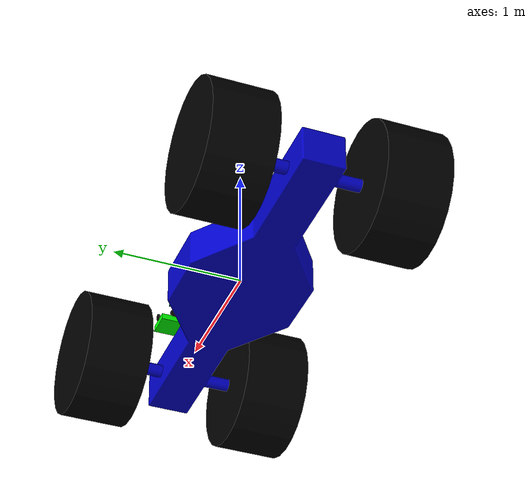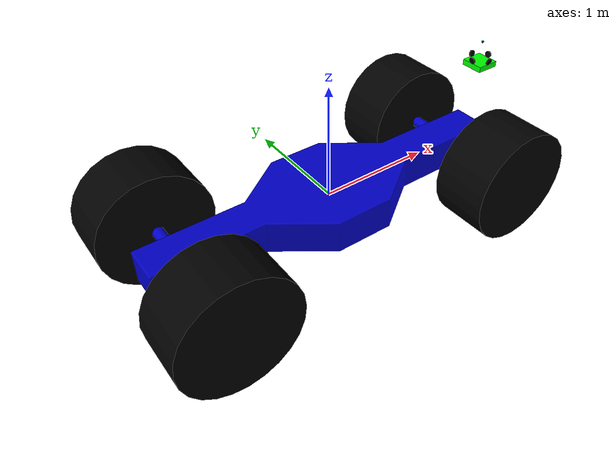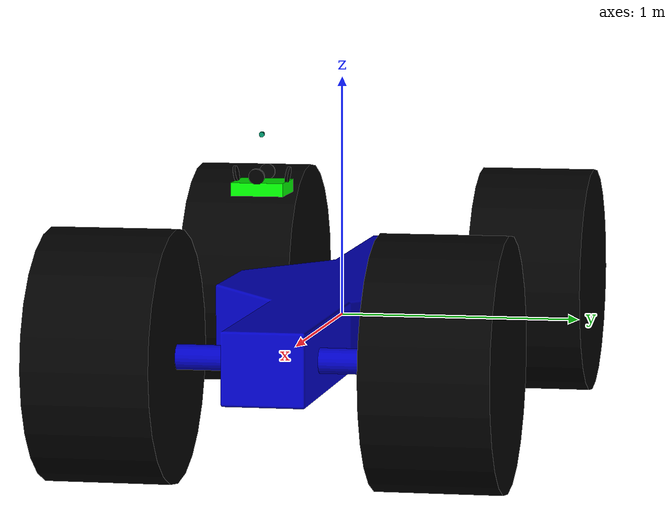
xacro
<?xml version="1.0"?>
<robot name="etractor" xmlns:xacro="http://ros.org/wiki/xacro">

<xacro:include filename="$(find et_sim)/urdf/includes/properties.urdf.xacro"/>
<xacro:include filename="$(find et_sim)/urdf/includes/materials.urdf.xacro"/>
<xacro:include filename="$(find et_sim)/urdf/includes/inertials.urdf.xacro"/>
<xacro:include filename= "$(find et_sim)/urdf/sensoric/360_cam_sys.urdf.xacro" />
<xacro:include filename= "$(find et_sim)/urdf/sensoric/zed2_simple.urdf.xacro" />

<!-- Dummy link workaround -->
<link name="base_link">
    <visual>
      <geometry>
        <sphere radius="0.01"/>
      </geometry>
      <material name="blue"/>
    </visual>
    <collision>
      <geometry>
        <sphere radius="0.01"/>
      </geometry>
    </collision>
  </link>

    <!-- Baseframe -->
    <link name="baseframe">
        <visual>
            <geometry>
                <mesh filename="package://et_sim/meshes/baseframe.dae" />
            </geometry>
            <material name="blue" />
            <origin xyz="0 0 0" rpy="${pi/2} 0 0" />
        </visual>
        <collision>
            <geometry>
                <mesh filename="package://et_sim/meshes/baseframe.dae" />
            </geometry>
            <origin xyz="0 0 0" rpy="${pi/2} 0 0" />
        </collision>
        <xacro:default_inertial mass="${baseframe_mass}"/>
    </link>
    <joint name="baseframe-base_link" type="fixed">
        <parent link="base_link"/>
        <child link="baseframe"/>
    </joint>

<!-- Steeraxis -->
    <xacro:macro name="steeraxis" params="prefix reflect" >
    <link name="${prefix}_steeraxis">
        <visual>
            <geometry>
                <cylinder radius="${steeraxis_dia/2}" length="${steeraxis_length}"/>
            </geometry>
            <material name= "blue"/>
            <origin xyz="0.0 0.0 0.0" rpy="${pi_half} 0.0 0.0"/>
        </visual>
        <collision>
            <geometry>
                <cylinder radius="${steeraxis_dia/2}" length="${steeraxis_length}"/>
            </geometry>
            <origin xyz="0.0 0.0 0.0" rpy="${pi_half} 0.0 0.0"/>
        </collision>
        <xacro:solid_cylinder_inertial
            radius  = "${steeraxis_dia/2}"
            height  = "${steeraxis_length}"
            mass    = "${steeraxis_mass}">
        </xacro:solid_cylinder_inertial>
    </link>
    <joint name="${prefix}_axis_baseframe" type="fixed">
        <parent link="baseframe"/>
        <child link="${prefix}_steeraxis"/>
        <origin xyz="${((baseframe_length/2) -steeraxis_offset) * reflect} 0.0 0.0" rpy="0.0 0.0 0.0"/>
    </joint>
</xacro:macro>

<xacro:steeraxis prefix="front"  reflect="1" />
<xacro:steeraxis prefix="back"   reflect="-1" />

<!-- wheels begin -->
<xacro:macro name= "wheel" params= "prefix suffix lr_refl">
    <link name="${prefix}_${suffix}_wheel">
        <xacro:solid_cylinder_inertial
            radius  = "${wheel_dia/2}"
            height  = "${wheel_width}"
            mass    = "${wheel_mass}">
        </xacro:solid_cylinder_inertial>
        <visual>
            <origin rpy="${pi_half} 0.0 0.0"/>
            <geometry>
                <cylinder radius="${wheel_dia/2}" length="${wheel_width}"/>
            </geometry>
            <material name= "black"/>
        </visual>
        <collision>
            <origin rpy="${pi_half} 0.0 0.0"/>
            <geometry>
                <cylinder radius="${wheel_dia/2}" length="${wheel_width}"/>
            </geometry>
        </collision>
    </link>
    <joint name="${prefix}_${suffix}_wheel_joint" type="continuous">
        <origin xyz="0.0 ${(steeraxis_length+wheel_width) * lr_refl/2.0} 0.0" rpy="0.0 0.0 0.0"/>
        <parent link="${prefix}_steeraxis"/>
        <child link="${prefix}_${suffix}_wheel"/>
        <axis xyz="0 1 0 "/>
        <limit effort="${wheel_max_torque}" velocity="${wheel_max_vel}"/>
    </joint>
    <gazebo reference="${prefix}_${suffix}_wheel">
        <mu1 value ="${wheel_friction_coeff_dir1}"/>
        <mu2 value ="${wheel_friction_coeff_dir2}"/>
        <kp value  ="${wheel_stiffness_coeff}"   />
        <kd value  ="${wheel_damping_coeff}"   />
        <material>Gazebo/Black</material>
      </gazebo>
    <!-- This block connects the wheel joint to an actuator (motor), which informs both
    simulation and visualization of the robot -->
    <transmission name="${prefix}_${suffix}_wheel_trans">
        <type>transmission_interface/SimpleTransmission</type>
        <actuator name="${prefix}_${suffix}_wheel_motor">
          <mechanicalReduction>1</mechanicalReduction>
        </actuator>
        <joint name="${prefix}_${suffix}_wheel_joint">
          <hardwareInterface>hardware_interface/VelocityJointInterface</hardwareInterface>
        </joint>
      </transmission>

</xacro:macro>

<xacro:wheel prefix="front"    suffix="left"   lr_refl= "1" />
<xacro:wheel prefix="front"    suffix="right"  lr_refl= "-1" />
<xacro:wheel prefix="back"     suffix="left"   lr_refl= "1" />
<xacro:wheel prefix="back"     suffix="right"  lr_refl= "-1" />
<!-- wheels end -->

<!-- Gazebo plugin for ROS Control -->
<gazebo>
    <plugin name="gazebo_ros_control" filename="libgazebo_ros_control.so">
        <robotNamespace>/</robotNamespace>
    </plugin>
</gazebo>

<!-- 360° Camera System -->
<xacro:cam_sys name="camsys"
parent= "baseframe"
base_x = "${camsys_base_x}"
base_y = "${camsys_base_y}"
base_z = "${camsys_base_z}"
base_mass = "${camsys_base_mass}"
cam_tilt = "${camsys_tilt}"
hfov="${camsys_hfov}"
res_x="${camsys_res_x}"
res_y= "${camsys_res_y}"
image_format = "R8G8B8"
update_rate = "50"
>
<origin xyz="${camsys_offset_xyz}" rpy="0.0 0.0 0.0"/>
</xacro:cam_sys>

<!-- Simple ZED2 Modell -->
<xacro:zed2_simple name="zed2" parent="camsys_base" hfov="110" res_w="1920" res_h="1080">
<origin xyz="0 0 0.2" rpy="0.0 ${10 *pi / 180} 0.0"/>
</xacro:zed2_simple>
</robot>

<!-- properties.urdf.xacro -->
<robot name="properties" xmlns:xacro="http://ros.org/wiki/xacro">
    <!-- Baseframe-Parameters-->
    <xacro:property name="baseframe_mass" value="300" />
    <xacro:property name="baseframe_length" value="3.300" />
    <xacro:property name="baseframe_width" value="0.980" />
    <xacro:property name="baseframe_height" value="0.290" />
    <xacro:property name="baseframe_width" value="0.980" />
    <!-- Steerin-axis-Parameter (Simplyfied as cylinder)-->
    <xacro:property name="steeraxis_mass"   value="100" />
    <xacro:property name="steeraxis_dia"    value="0.1" />
    <xacro:property name="steeraxis_length" value="0.8" />
    <xacro:property name="steeraxis_offset"  value="0.3" />
    <!-- wheel-Parametes -->
    <xacro:property name="wheel_dia"    value="1" />
    <xacro:property name="wheel_width"  value="0.5" />
    <xacro:property name="wheel_mass"   value="100" />
    <xacro:property name="wheel_friction_coeff_dir1"   value="10" />
    <xacro:property name="wheel_friction_coeff_dir2"   value="10" />
    <xacro:property name="wheel_stiffness_coeff"   value="1000000000" />
    <xacro:property name="wheel_damping_coeff"   value="1" />
    <xacro:property name="wheel_max_torque"   value="1000000000" />
    <xacro:property name="wheel_max_vel"   value="10000" />
    <!--360°-Camera-System-Parameters-->
    <xacro:property name="camsys_base_x"    value="0.2" />
    <xacro:property name="camsys_base_y"    value="0.2" />
    <xacro:property name="camsys_base_z"    value="0.05" />
    <xacro:property name="camsys_base_mass"    value="1" />
    <xacro:property name="camsys_offset_xyz"    value="${baseframe_length/2} 0 0.7" />
    <xacro:property name="camsys_tilt"    value="10" />
    <xacro:property name="camsys_res_x"    value="4192" />
    <xacro:property name="camsys_res_y"    value="3120" />
    <xacro:property name="camsys_hfov"    value="110" />

    <!-- Constants -->
    <xacro:property name="pi"       value="3.1415926" />
    <xacro:property name="pi_half"  value="1.5707963" />
    <xacro:property name="pi_quad"  value="0.7853981" />
</robot>

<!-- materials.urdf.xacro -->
<robot name="materials" xmlns:xacro="http://ros.org/wiki/xacro">

    <!-- Color definition -->
    <material name="blue">
        <color rgba="0.0 0.0 0.8 1.0" />
    </material>

    <material name="white">
        <color rgba="1.0 1.0 1.0 1.0" />
    </material>

    <material name="black">
        <color rgba="0.0 0.0 0.0 1.0" />
    </material>

    <material name="red">
        <color rgba="1.0 0.0 0.0 1.0" />
    </material>
        <material name="green">
        <color rgba="0.0 1.0 0.0 1.0" />
    </material>

</robot>

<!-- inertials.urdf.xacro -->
<robot name="inertials" xmlns:xacro="http://ros.org/wiki/xacro">
<!-- Inertia of a solid cylinder, with origin in center-->
  <xacro:macro name="solid_cylinder_inertial"
  params="radius height mass">
<inertial>
<mass value="${mass}"/>
<inertia ixx="${mass * (3*radius*radius + height*height) / 12}"
  ixy="0" ixz="0"
  iyy="${mass * (3*radius*radius + height*height) / 12}"
  iyz="0"
  izz="${mass * radius * radius / 2}"/>
</inertial>
</xacro:macro>

<!-- Default inertial-->
<xacro:macro name="default_inertial" params="mass">
    <inertial>
      <mass value="${mass}" />
      <inertia ixx="1.0" ixy="0.0" ixz="0.0" iyy="1.0" iyz="0.0" izz="1.0" />
    </inertial>
  </xacro:macro>

  <!-- Inertial for solid cuboid with dimensions x y z  -->
  <xacro:macro name="solid_cuboid_inertial" params="rpy xyz mass x y z">
      <inertial>
          <origin rpy="${rpy}" xyz="${xyz}"/>
          <mass value="${mass}" />
          <inertia
              ixx="${mass * (y * y + z * z) / 12.0}" ixy="0.0" ixz="0.0"
              iyy="${mass * (x * x + z * z) / 12.0}" iyz="0.0"
              izz="${mass * (x * x + y * y) / 12.0}" />
      </inertial>
  </xacro:macro>

  </robot>

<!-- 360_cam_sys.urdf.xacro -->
<robot name="cam_sys" xmlns:xacro="http://ros.org/wiki/xacro">
<xacro:include filename="$(find et_sim)/urdf/sensoric/generic_cam.urdf.xacro"/>

<xacro:macro name= "cam_sys" params="name parent *origin base_x base_y base_z base_mass cam_tilt hfov res_x res_y image_format update_rate" >
<!--Base-Begin-->
<link name="${name}_base">
<xacro:solid_cuboid_inertial
rpy= "0 0 0"
xyz= "0 0 0"
mass= "1"
x="${base_x}"
y="${base_y}"
z="${base_z}"/>
    <visual>
        <geometry>
            <box size="${base_x} ${base_y} ${base_z}"/>
        </geometry>
        <material name="green"/>>
    </visual>
    <collision>
        <geometry>
            <box size="${base_x} ${base_y} ${base_z}"/>
        </geometry>
    </collision>
</link>
<joint name="${name}_base_joint" type="fixed">
    <xacro:insert_block name="origin" />
    <parent link="${parent}"/>
    <child link="${name}_base"/>
</joint>
<gazebo reference="${name}_base">
    <material>Gazebo/Green</material>
</gazebo>
<!--Base-End-->

<xacro:macro name= "gen_cam_wrapper" params="orientation_suffix *origin">

<xacro:generic_camera name= "${name}_${orientation_suffix}_cam"
parent="${name}_base"
ros_topic = "${name}_${orientation_suffix}_topic"
cam_info_topic= "${name}_${orientation_suffix}_info_topic"
update_rate = "50"
res_x = "${res_x}"
res_y = "${res_y}"
image_format = "${image_format}"
hfov = "${hfov}"
>
<xacro:insert_block name="origin" />
</xacro:generic_camera>
</xacro:macro>

<xacro:gen_cam_wrapper orientation_suffix = "north">
<origin xyz="${base_x/2} 0.0 ${base_z}" rpy="0.0 ${cam_tilt*pi/180} 0.0"/>
</xacro:gen_cam_wrapper>
<xacro:gen_cam_wrapper orientation_suffix = "east">
<origin xyz="0 ${-base_y/2} ${base_z}" rpy="0.0 ${cam_tilt*pi/180} ${-pi/2}"/>
</xacro:gen_cam_wrapper>
<xacro:gen_cam_wrapper orientation_suffix = "south">
<origin xyz="${-base_x/2} 0.0 ${base_z}" rpy="0.0 ${cam_tilt*pi/180} ${pi}"/>
</xacro:gen_cam_wrapper>
<xacro:gen_cam_wrapper orientation_suffix = "west">
<origin xyz="0 ${base_y/2} ${base_z}" rpy="0.0 ${cam_tilt*pi/180} ${pi/2}"/>
</xacro:gen_cam_wrapper>
</xacro:macro>
</robot>

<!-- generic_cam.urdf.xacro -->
<robot xmlns:xacro="http://ros.org/wiki/xacro">

<xacro:include filename="$(find et_sim)/urdf/includes/properties.urdf.xacro"/>
  <xacro:macro name="generic_camera" params="name parent *origin ros_topic cam_info_topic update_rate res_x res_y image_format hfov">
    <joint name="${name}_joint" type="fixed">
      <xacro:insert_block name="origin" />
      <parent link="${parent}"/>
      <child link="${name}_link"/>
    </joint>

    <link name="${name}_link">
        <visual>
        <origin rpy="0 ${pi_half} 0"/>
            <geometry>
                <cylinder radius="0.03" length="0.01"/>
            </geometry>
            <material name= "black"/>
        </visual>
        <collision>
            <geometry>
                <cylinder radius="0.03" length="0.01"/>
            </geometry>
        </collision>
    </link>

    <joint name="${name}_optical_joint" type="fixed">
      <parent link="${name}_link" />
      <child link="${name}_optical_frame"/>
    </joint>

    <link name="${name}_optical_frame"/>

    <gazebo reference="${name}_link">
    <material>Gazebo/Black</material>
      <sensor type="camera" name="${name}_camera_sensor">
        <update_rate>${update_rate}</update_rate>
        <camera>
          <horizontal_fov>${hfov * pi/180.0}</horizontal_fov>
          <image>
            <format>${image_format}</format>
            <width>${res_x}</width>
            <height>${res_y}</height>
          </image>
          <clip>
            <near>0.01</near>
            <far>100</far>
          </clip>
        </camera>

        <plugin name="${name}_camera_controller" filename="libgazebo_ros_camera.so">
          <cameraName>${name}</cameraName>
          <imageTopicName>${ros_topic}</imageTopicName>
          <cameraInfoTopicName>${cam_info_topic}</cameraInfoTopicName>
          <frameName>${name}_optical_frame</frameName>
        </plugin>
      </sensor>
    </gazebo>
  </xacro:macro>

</robot>

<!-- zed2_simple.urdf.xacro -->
<robot xmlns:xacro="http://ros.org/wiki/xacro">
<xacro:include filename="$(find et_sim)/urdf/includes/properties.urdf.xacro"/>

<xacro:macro name="zed2_simple" params="name parent *origin hfov res_w res_h">
<link name="${name}_frame">
  <visual>
    <geometry>
      <box size="0.01 0.01 0.01"/>
    </geometry>
  </visual>
  <collision>
    <geometry>
      <box size="0.01 0.01 0.01"/>
    </geometry>
  </collision>
</link>
<joint name="base_link" type="fixed">
  <xacro:insert_block name="origin" />
  <parent link="${parent}"/>
  <child link="${name}_frame"/>
</joint>
<link name="${name}_optical_frame"> />
  <visual>
    <geometry>
      <cylinder radius="0.01" length="0.01"/>
    </geometry>
  </visual>
  <collision>
    <geometry>
      <cylinder radius="0.01" length="0.01"/>
    </geometry>
  </collision>
</link>

<joint name="frame_link" type="fixed">
  <origin xyz="0.0 0.0 0.0" rpy="${-pi_half} 0 ${-pi_half}"/>
      <parent link="${name}_frame"/>
      <child link="${name}_optical_frame"/>
</joint>

  <gazebo reference="${name}_frame">
    <sensor type="depth" name="${name}_frame_sensor">
      <always_on>true</always_on>
      <update_rate>20.0</update_rate>
      <camera>
        <horizontal_fov>${hfov*pi/180.0}</horizontal_fov>
        <image>
          <format>R8G8B8</format>
          <width>${res_w}</width>
          <height>${res_h}</height>
        </image>
        <clip>
          <near>0.03</near>
          <far>25</far>
        </clip>
      </camera>
      <plugin name="${name}_frame_controller" filename="libgazebo_ros_openni_kinect.so">
        <alwaysOn>true</alwaysOn>
        <updateRate>20.0</updateRate>
        <cameraName>${name}</cameraName>
        <imageTopicName>${name}/ir/image_raw</imageTopicName>
        <cameraInfoTopicName>${name}/ir/camera_info</cameraInfoTopicName>
        <depthImageTopicName>${name}/depth/image_raw</depthImageTopicName>
        <depthImageCameraInfoTopicName>${name}/depth/camera_info</depthImageCameraInfoTopicName>
        <pointCloudTopicName>${name}/depth/points</pointCloudTopicName>
        <frameName>${name}_optical_frame</frameName>
        <pointCloudCutoff>0.5</pointCloudCutoff>
        <distortionK1>0.00000001</distortionK1>
        <distortionK2>0.00000001</distortionK2>
        <distortionK3>0.00000001</distortionK3>
        <distortionT1>0.00000001</distortionT1>
        <distortionT2>0.00000001</distortionT2>
        <CxPrime>0</CxPrime>
        <Cx>0</Cx>
        <Cy>0</Cy>
        <focalLength>0</focalLength>
        <hackBaseline>0</hackBaseline>
      </plugin>
    </sensor>

    <sensor type="depth" name="${name}_frame_sensor">
      <always_on>true</always_on>
      <update_rate>20.0</update_rate>
      <camera>
        <horizontal_fov>${hfov*pi/180.0}</horizontal_fov>
        <image>
          <format>R8G8B8</format>
          <width>${res_w}</width>
          <height>${res_h}</height>
        </image>
        <clip>
          <near>0.01</near>
          <far>25</far>
        </clip>
      </camera>

      <plugin name="${name}_frame_controller" filename="libgazebo_ros_openni_kinect.so">
        <alwaysOn>true</alwaysOn>
        <updateRate>20.0</updateRate>
        <cameraName>${name}</cameraName>
        <imageTopicName>${name}/rgb/image_raw</imageTopicName>
        <cameraInfoTopicName>${name}/rgb/camera_info</cameraInfoTopicName>
        <depthImageTopicName>${name}/depth/image_raw</depthImageTopicName>
        <depthImageCameraInfoTopicName>${name}/depth/camera_info</depthImageCameraInfoTopicName>
        <pointCloudTopicName>${name}/rgb/points</pointCloudTopicName>
        <frameName>${name}_optical_frame</frameName>
        <pointCloudCutoff>0.5</pointCloudCutoff>
        <distortionK1>0.00000001</distortionK1>
        <distortionK2>0.00000001</distortionK2>
        <distortionK3>0.00000001</distortionK3>
        <distortionT1>0.00000001</distortionT1>
        <distortionT2>0.00000001</distortionT2>
        <CxPrime>0</CxPrime>
        <Cx>0</Cx>
        <Cy>0</Cy>
        <focalLength>0</focalLength>
        <hackBaseline>0</hackBaseline>
      </plugin>
    </sensor>
  </gazebo>

</xacro:macro>

</robot>
